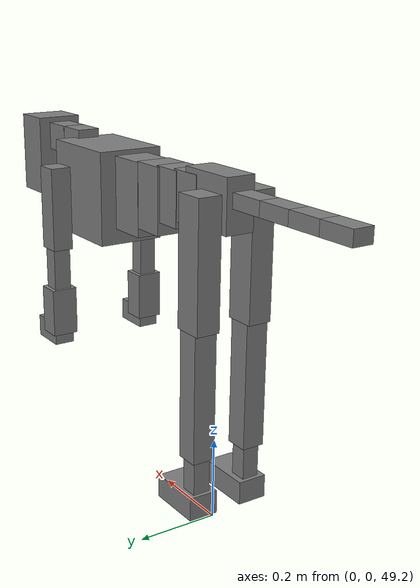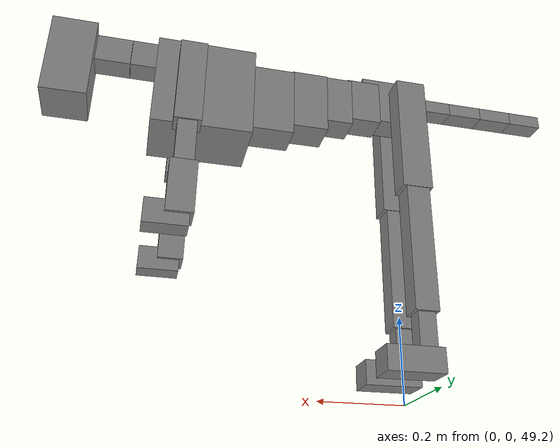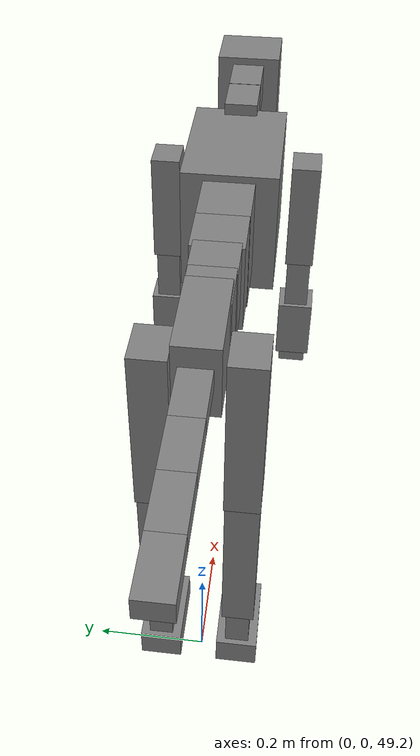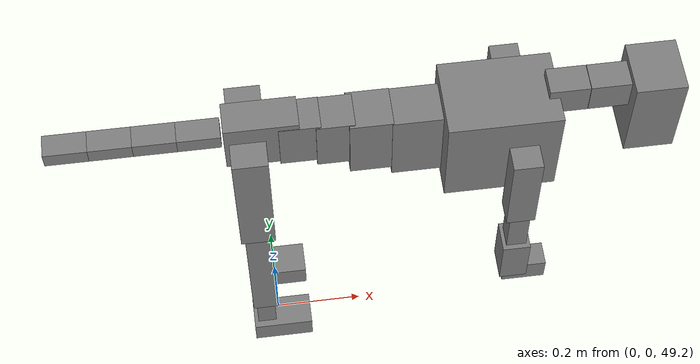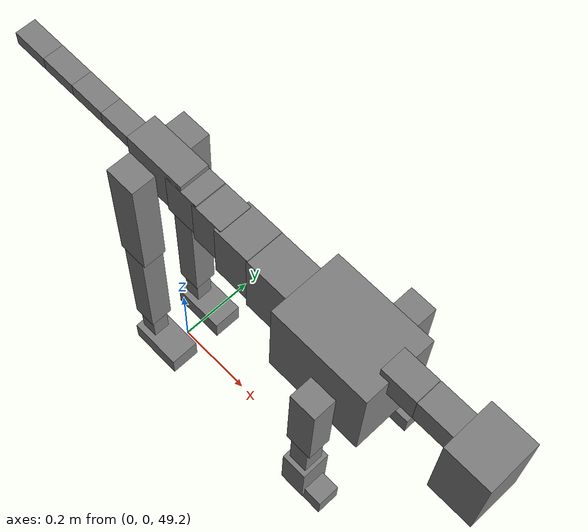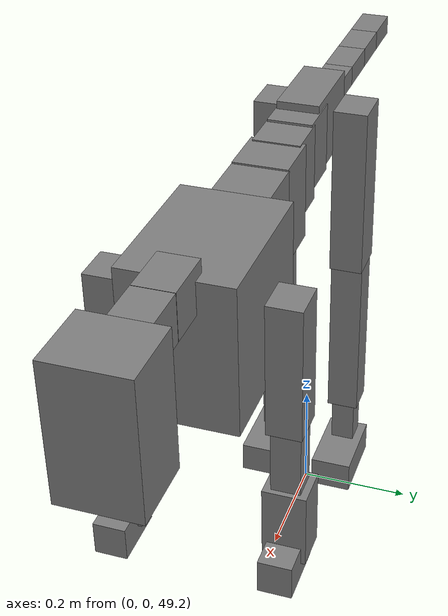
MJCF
<mujoco model="dog">

    <default>
        <joint armature="0.02" stiffness="1" damping="0.2" limited="true"/>
        <geom condim="3" friction="1 0.05 0.05" margin="0.01"/>
        <motor ctrllimited="true" ctrlrange="-1.0 1.0" forcelimited="true" gear="50"/>
    </default>

    <compiler inertiafromgeom="true" angle="radian"/>

    <option timestep="0.016" iterations="50" tolerance="1e-10" solver="Newton" jacobian="dense" cone="pyramidal"/>

    <size nconmax="20000" njmax="60000" nstack="5000000"/>
    <visual>
        <map force="0.1" zfar="30"/>
        <rgba haze="0.15 0.25 0.35 1"/>
        <quality shadowsize="2048"/>
        <global offwidth="800" offheight="800"/>
    </visual>

    <asset>
        <texture type="skybox" builtin="gradient" rgb1="0.3 0.5 0.7" rgb2="0 0 0" width="512" height="512"/>
        <texture name="texplane" type="2d" builtin="checker" rgb1=".2 .3 .4" rgb2=".1 0.15 0.2" width="512" height="512"
                 mark="cross" markrgb=".8 .8 .8"/>
        <texture name="texgeom" type="cube" builtin="flat" mark="cross" width="127" height="1278" rgb1="0.8 0.6 0.4"
                 rgb2="0.8 0.6 0.4" markrgb="1 1 1" random="0.01"/>

        <material name="matplane" reflectance="0.3" texture="texplane" texrepeat="1 1" texuniform="true"/>
        <material name="matgeom" texture="texgeom" texuniform="true" rgba="0.8 0.6 .4 1"/>
    </asset>

    <worldbody>
        <geom name="floor" pos="0 0 0" size="0 0 .25" type="plane" material="matplane" condim="3"/>

        <light directional="false" diffuse=".2 .2 .2" specular="0 0 0" pos="0 0 5" dir="0 0 -1" castshadow="false"/>
        <light mode="targetbodycom" target="torso" directional="false" diffuse=".8 .8 .8" specular="0.3 0.3 0.3"
               pos="0 0 4.0" dir="0 0 -1"/>

        <body name="root" pos="0 0 50">
            <freejoint name="root_1"/>
            <geom type="box" pos="0 0 -0.02" size="0.0774  0.0358  0.063" density="2030"/>

            <body name="spine1" pos="0.054 0 0">
                <joint name="spine1_y" axis="0 1 0" range="0 0.7" limited="true"/>
                <geom type="box" pos="0.02375 0 -0.03" size="0.04375  0.0375  0.05985" density="2030"/>

                <body name="spine2" pos="0.0612 0 0">
                    <joint name="spine2_y" axis="0 1 0" range="-0.15 0.15" limited="true"/>
                    <geom type="box" pos="0.03555  0  -0.04" size="0.04055  0.039  0.06615" density="2030"/>

                    <body name="spine3" pos="0.0730 0 0">
                        <joint name="spine3_y" axis="0 1 0" range="-0.15 0.15" limited="true"/>
                        <geom type="box" pos="0.03555  0  -0.057" size="0.04555  0.0445  0.081" density="2030"/>

                        <body name="spine4" pos="0.0780 0 0">
                            <joint name="spine4_y" axis="0 1 0" range="-0.15 0.15" limited="true"/>
                            <geom type="box" pos="0.05265  0  -0.07" size="0.05265  0.045  0.09135" density="2030"/>

                            <body name="torso" pos="0.1082 0 0">
                                <joint name="torso_y" axis="0 1 0" range="-0.15 0.15" limited="true"/>
                                <geom type="box" pos="0.11925  0  -0.085" size="0.11925  0.085  0.11745"
                                      density="2030"/>

                                <body name="neck1" pos="0.2160  0   0.0180">
                                    <joint name="neck1_y" axis="0 1 0" range="-1.2  -1" limited="true"/>
                                    <geom type="box" pos="0.0423  0  0" size="0.0423  0.03  0.036" density="2325"/>

                                    <body name="neck2" pos="0.0853  0  0">
                                        <joint name="neck2_y" axis="0 1 0" range="0.1  0" limited="true"/>
                                        <geom type="box" pos="0.0423  0  0" size="0.0423  0.03  0.036" density="2325"/>

                                        <body name="head" pos="0.0853  0  0">
                                            <joint name="head_y" axis="0 1 0" range="-0.3  -0.2" limited="true"/>
                                            <geom type="box" pos="0.0531  0  -0.055" size="0.0531  0.06  0.1044"
                                                  density="4030"/>

                                        </body>
                                    </body>
                                </body>

                                <body name="front_shoulder" pos="0.156  0   -0.0480">
                                    <joint name="front_shoulder_y" axis="0 1 0" range="-1 1.5" limited="true"/>
                                    <geom type="box" pos="0 0.13 -0.0799" size="0.0310  0.0265  0.1066" density="1158"/>
                                    <geom type="box" pos="0 -0.13 -0.0799" size="0.0310  0.0265  0.1066"
                                          density="1158"/>

                                    <body name="front_elbow" pos="0  0  -0.1599">
                                        <joint name="front_elbow_y" axis="0 1 0" range="-2 0" limited="true"/>
                                        <geom type="box" pos="0 0.13 -0.0729" size="0.0220  0.0225  0.0729"
                                              density="1081"/>
                                        <geom type="box" pos="0 -0.13 -0.0729" size="0.0220  0.0225  0.0729"
                                              density="1081"/>

                                        <body name="front_wrist" pos="0  0  -0.1459">
                                            <joint name="front_wrist_y" axis="0 1 0" range="-0.2 0" limited="true"/>
                                            <geom type="box" pos="0 0.13 -0.0490" size="0.0302  0.0335  0.0621"
                                                  density="1664"/>
                                            <geom type="box" pos="0 -0.13 -0.0490" size="0.0302  0.0335  0.0621"
                                                  density="1664"/>

                                            <body name="front_finger_end" pos="0  0  -0.0980">
                                                <joint name="front_finger_y" axis="0 1 0" range="-0.4 1"
                                                       limited="true"/>
                                                <geom type="box" pos="0.0262  0.13  -0.0131"
                                                      size="0.0481  0.0262  0.0281" density="1515"/>
                                                <geom type="box" pos="0.0262  -0.13  -0.0131"
                                                      size="0.0481  0.0262  0.0281" density="1515"/>

                                            </body>

                                        </body>
                                    </body>
                                </body>

                            </body>
                        </body>
                    </body>
                </body>
            </body>

            <body name="back_hip" pos="-0.03 0 -0.018">
                <joint name="back_hip_y" axis="0 1 0" range="-1.5 0.3" limited="true"/>
                <geom type="box" pos="0 0.07 -0.1300" size="0.0375  0.0294  0.1528" density="1154"/>
                <geom type="box" pos="0 -0.07 -0.1300" size="0.0375  0.0294  0.1528" density="1154"/>

                <body name="back_knee" pos="0  0  -0.2600">
                    <joint name="back_knee_y" axis="0 1 0" range="0 2.8" limited="true"/>
                    <geom type="box" pos="0 0.07 -0.1583" size="0.0287  0.0283  0.1739" density="1227"/>
                    <geom type="box" pos="0 -0.07 -0.1583" size="0.0287  0.0283  0.1739" density="1227"/>

                    <body name="back_ankle" pos="0  0  -0.3167">
                        <joint name="back_ankle_y" axis="0 1 0" range="-2.2 0" limited="true"/>
                        <geom type="box" pos="0 0.07 -0.0566" size="0.0211  0.0211  0.0679" density="1284"/>
                        <geom type="box" pos="0 -0.07 -0.0566" size="0.0211  0.0211  0.0679" density="1284"/>

                        <body name="back_toe_end" pos="0  0  -0.1132">
                            <joint name="back_toe_y" axis="0 1 0" range="-0.4 1" limited="true"/>
                            <geom type="box" pos="0.0368  0.07  -0.0136" size="0.0675  0.0368  0.0286" density="1515"/>
                            <geom type="box" pos="0.0368  -0.07  -0.0136" size="0.0675  0.0368  0.0286" density="1515"/>

                        </body>
                    </body>
                </body>
            </body>

            <body name="tail1" pos="-0.074 0 -0.006">
                <joint name="tail1_y" axis="0 1 0" range="-0.2 0.2" limited="true"/>
                <geom type="box" pos="-0.0536  0  0" size="0.045  0.025  0.0175" density="1587"/>

                <body name="tail2" pos="-0.09 0 0">
                    <joint name="tail2_y" axis="0 1 0" range="-0.2 0.2" limited="true"/>
                    <geom type="box" pos="-0.0536  0  0" size="0.045  0.025  0.0175" density="1587"/>

                    <body name="tail3" pos="-0.09 0 0">
                        <joint name="tail3_y" axis="0 1 0" range="-0.2 0.2" limited="true"/>
                        <geom type="box" pos="-0.0536  0  0" size="0.045  0.025  0.0175" density="1587"/>

                        <body name="tail4" pos="-0.09 0 0">
                            <joint name="tail4_y" axis="0 1 0" range="-0.2 0.2" limited="true"/>
                            <geom type="box" pos="-0.0536  0  0" size="0.045  0.025  0.0175" density="1587"/>

                        </body>
                    </body>
                </body>
            </body>
        </body>
    </worldbody>

    <actuator>
        <motor joint="spine1_y" forcerange="-150 150     "/>
        <motor joint="spine2_y" forcerange="-150 150     "/>
        <motor joint="spine3_y" forcerange="-150 150     "/>
        <motor joint="spine4_y" forcerange="-150 150     "/>
        <motor joint="torso_y" forcerange="-150 150     "/>
        <motor joint="neck1_y" forcerange="-100 100       "/>
        <motor joint="neck2_y" forcerange="-100 100       "/>
        <motor joint="head_y" forcerange="-150 150       "/>
        <motor joint="front_shoulder_y" forcerange="-130.47 146.37"/>
        <motor joint="front_elbow_y" forcerange="-131.32 132.23"/>
        <motor joint="front_wrist_y" forcerange="-148.42 119.85"/>
        <motor joint="front_finger_y" forcerange="-45.29 54.58"/>
        <motor joint="back_hip_y" forcerange="-308.71 282.93"/>
        <motor joint="back_knee_y" forcerange="-367.91 243.74"/>
        <motor joint="back_angle_y" forcerange="-66.52 170.83"/>
        <motor joint="back_toe_y" forcerange="-131.36 83.03"/>
        <motor joint="tail1_y" forcerange="-50 50     "/>
        <motor joint="tail2_y" forcerange="-50 50     "/>
        <motor joint="tail3_y" forcerange="-50 50     "/>
        <motor joint="tail4_y" forcerange="-50 50     "/>
    </actuator>
</mujoco>
